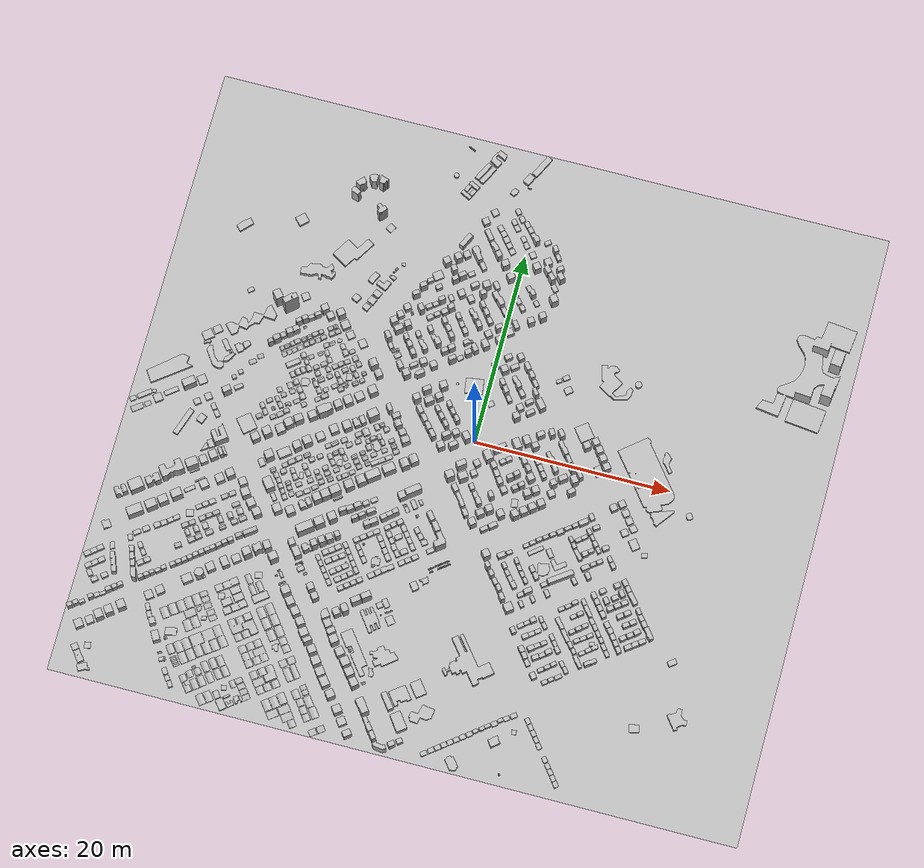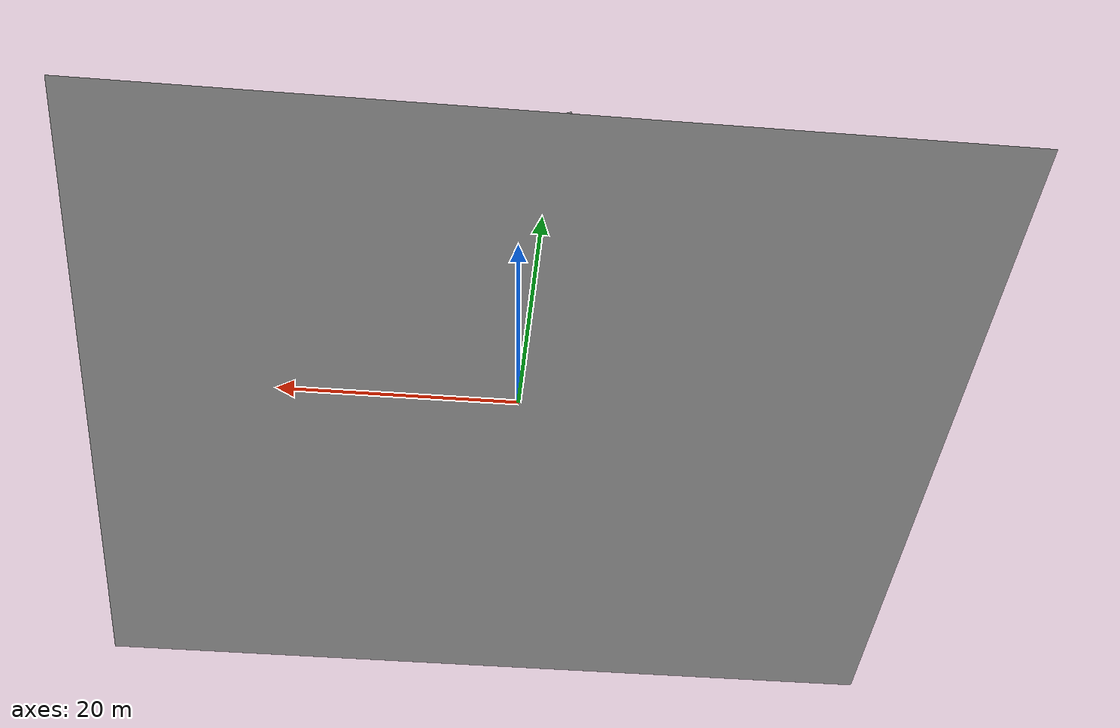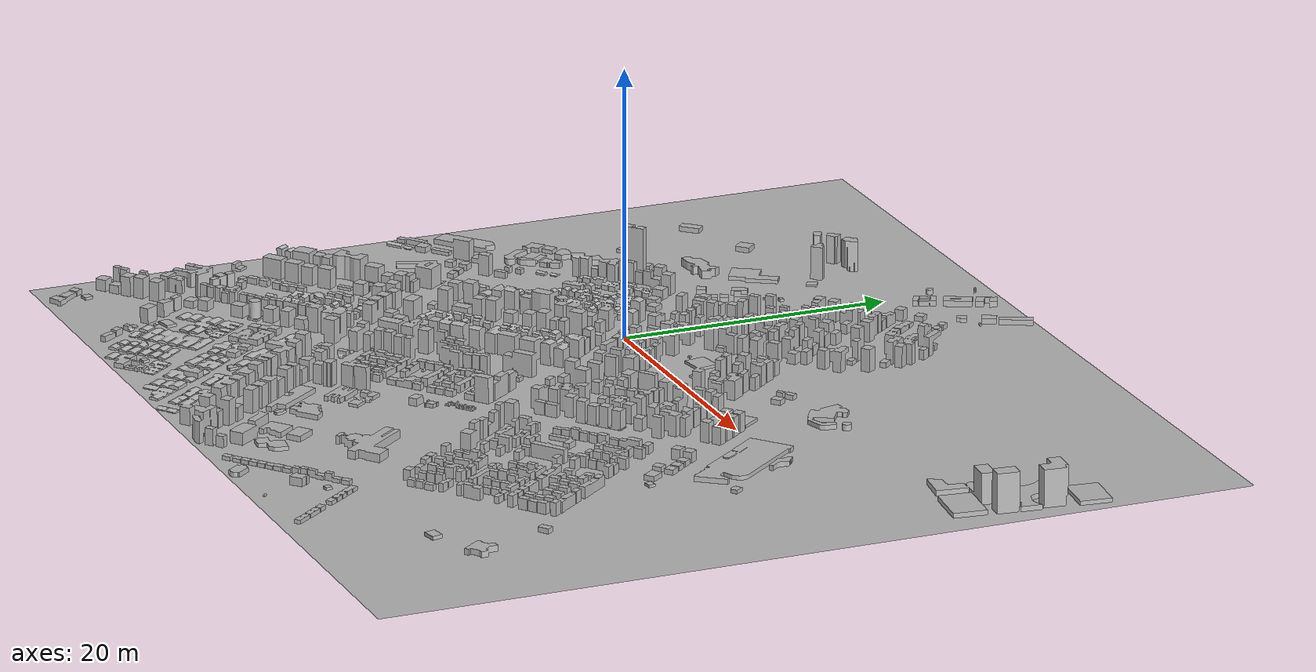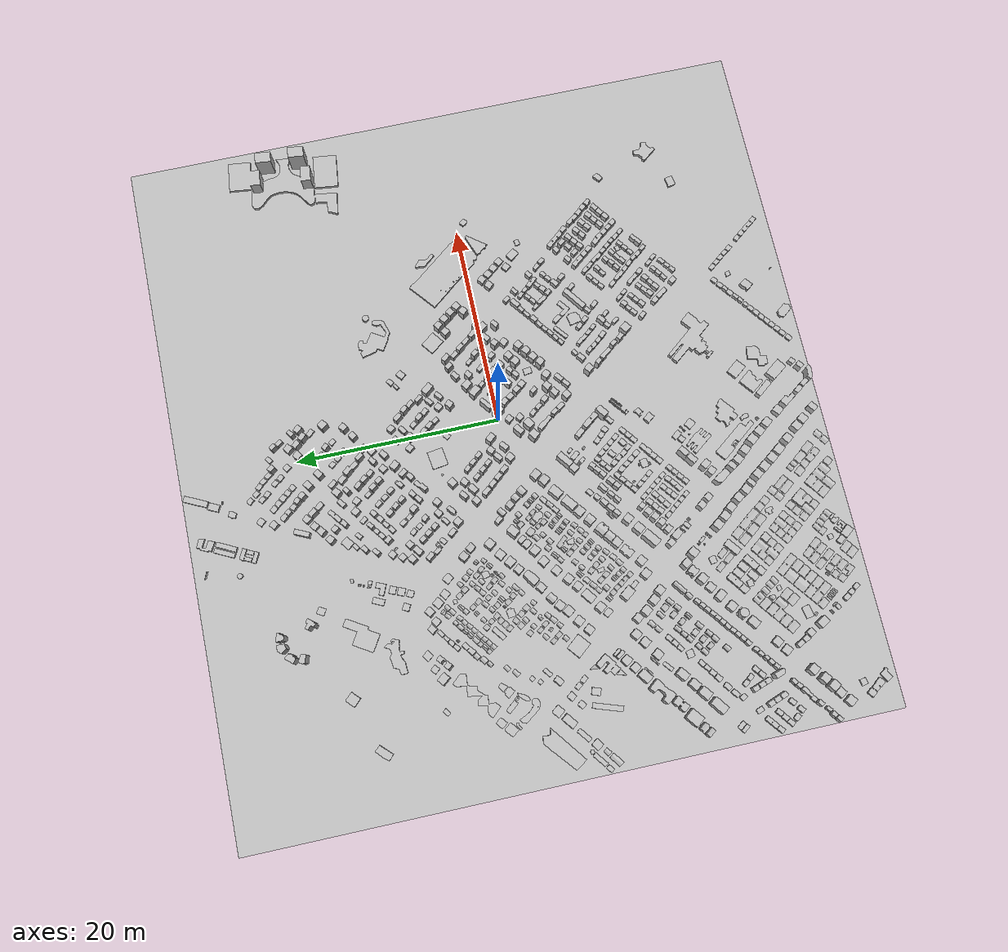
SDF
<?xml version="1.0" ?>
<sdf version="1.5">
  <model name="abu_dhabi_model_scaled">
    <pose>0 0 0 0 0 0</pose>
    <static>true</static>
    <link name="buildings">
      <visual name="visual">
        <geometry>
          <mesh><uri>model://abu_dhabi_model_scaled/media/buildings.dae</uri></mesh>
        </geometry>
        <pose>0 0 -3.5 0 0 0</pose>
      </visual>
      <collision name="collision">
        <geometry>
          <mesh><uri>model://abu_dhabi_model_scaled/media/buildings.dae</uri></mesh>
        </geometry>
        <pose>0 0 -3.5 0 0 0</pose>
      </collision>
    </link>
    <link name="terrain">
      <visual name="visual">
        <geometry>
          <mesh><uri>model://abu_dhabi_model_scaled/media/terrain.dae</uri></mesh>
        </geometry>
        <pose>0 0 -3.5 0 0 0</pose>
      </visual>
      <collision name="collision">
        <geometry>
          <mesh><uri>model://abu_dhabi_model_scaled/media/terrain.dae</uri></mesh>
        </geometry>
        <pose>0 0 -3.5 0 0 0</pose>
      </collision>
    </link>
  </model>
</sdf>
